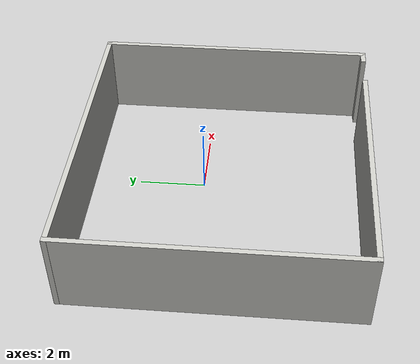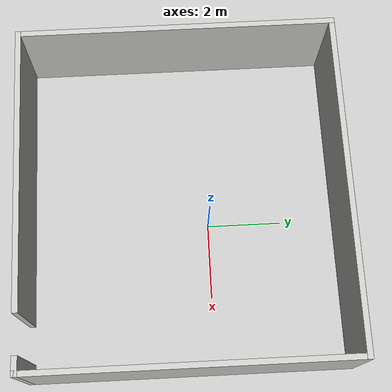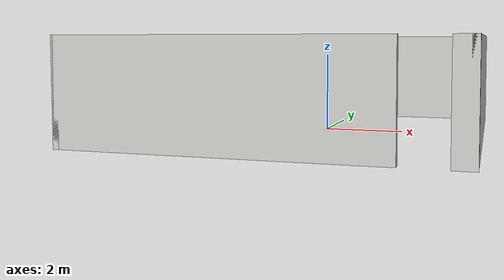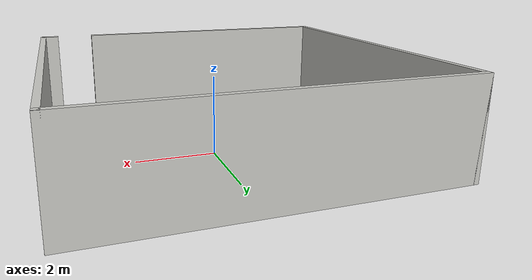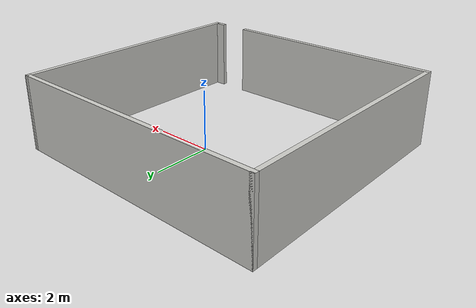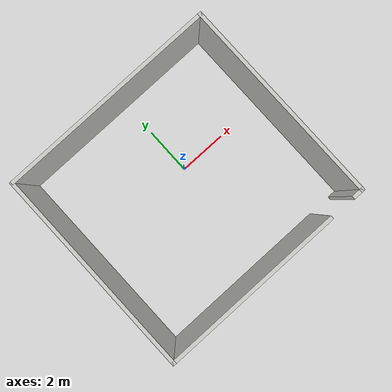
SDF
<?xml version='1.0'?>
<sdf version='1.6'>
  <model name='basic_walls'>
    <pose frame=''>-0.446065 -0.656887 0 0 -0 0</pose>
    <link name='Wall_0'>
      <collision name='Wall_0_Collision'>
        <geometry>
          <box>
            <size>9 0.15 2.5</size>
          </box>
        </geometry>
        <pose frame=''>0 0 1.25 0 -0 0</pose>
      </collision>
      <visual name='Wall_0_Visual'>
        <pose frame=''>0 0 1.25 0 -0 0</pose>
        <geometry>
          <box>
            <size>9 0.15 2.5</size>
          </box>
        </geometry>
        <material>
          <script>
            <uri>file://media/materials/scripts/gazebo.material</uri>
            <name>Gazebo/CeilingTiled</name>
          </script>
          <ambient>1 1 1 1</ambient>
        </material>
        <meta>
          <layer>0</layer>
        </meta>
      </visual>
      <pose frame=''>-0 4.175 0 0 -0 0</pose>
    </link>
    <link name='Wall_1'>
      <collision name='Wall_1_Collision'>
        <geometry>
          <box>
            <size>8.5 0.15 2.5</size>
          </box>
        </geometry>
        <pose frame=''>0 0 1.25 0 -0 0</pose>
      </collision>
      <visual name='Wall_1_Visual'>
        <pose frame=''>0 0 1.25 0 -0 0</pose>
        <geometry>
          <box>
            <size>8.5 0.15 2.5</size>
          </box>
        </geometry>
        <material>
          <script>
            <uri>file://media/materials/scripts/gazebo.material</uri>
            <name>Gazebo/CeilingTiled</name>
          </script>
          <ambient>1 1 1 1</ambient>
        </material>
        <meta>
          <layer>0</layer>
        </meta>
      </visual>
      <pose frame=''>4.425 0 0 0 -0 -1.5708</pose>
    </link>
    <link name='Wall_2'>
      <collision name='Wall_2_Collision'>
        <geometry>
          <box>
            <size>0.5 0.15 2.5</size>
          </box>
        </geometry>
        <pose frame=''>0 0 1.25 0 -0 0</pose>
      </collision>
      <visual name='Wall_2_Visual'>
        <pose frame=''>0 0 1.25 0 -0 0</pose>
        <geometry>
          <box>
            <size>0.5 0.15 2.5</size>
          </box>
        </geometry>
        <material>
          <script>
            <uri>file://media/materials/scripts/gazebo.material</uri>
            <name>Gazebo/CeilingTiled</name>
          </script>
          <ambient>1 1 1 1</ambient>
        </material>
        <meta>
          <layer>0</layer>
        </meta>
      </visual>
      <pose frame=''>4.25 -4.175 0 0 -0 3.14159</pose>
    </link>
    <link name='Wall_4'>
      <collision name='Wall_4_Collision'>
        <geometry>
          <box>
            <size>8.5 0.15 2.5</size>
          </box>
        </geometry>
        <pose frame=''>0 0 1.25 0 -0 0</pose>
      </collision>
      <visual name='Wall_4_Visual'>
        <pose frame=''>0 0 1.25 0 -0 0</pose>
        <geometry>
          <box>
            <size>8.5 0.15 2.5</size>
          </box>
        </geometry>
        <material>
          <script>
            <uri>file://media/materials/scripts/gazebo.material</uri>
            <name>Gazebo/CeilingTiled</name>
          </script>
          <ambient>1 1 1 1</ambient>
        </material>
        <meta>
          <layer>0</layer>
        </meta>
      </visual>
      <pose frame=''>-4.425 0 0 0 -0 -1.5708</pose>
    </link>
    <link name='Wall_5'>
      <collision name='Wall_5_Collision'>
        <geometry>
          <box>
            <size>7.5 0.15 2.5</size>
          </box>
        </geometry>
        <pose frame=''>0 0 1.25 0 -0 0</pose>
      </collision>
      <visual name='Wall_5_Visual'>
        <pose frame=''>0 0 1.25 0 -0 0</pose>
        <geometry>
          <box>
            <size>7.5 0.15 2.5</size>
          </box>
        </geometry>
        <material>
          <script>
            <uri>file://media/materials/scripts/gazebo.material</uri>
            <name>Gazebo/CeilingTiled</name>
          </script>
          <ambient>1 1 1 1</ambient>
        </material>
        <meta>
          <layer>0</layer>
        </meta>
      </visual>
      <pose frame=''>-0.75 -4.175 0 0 -0 0</pose>
    </link>
    <static>1</static>
  </model>
</sdf>
